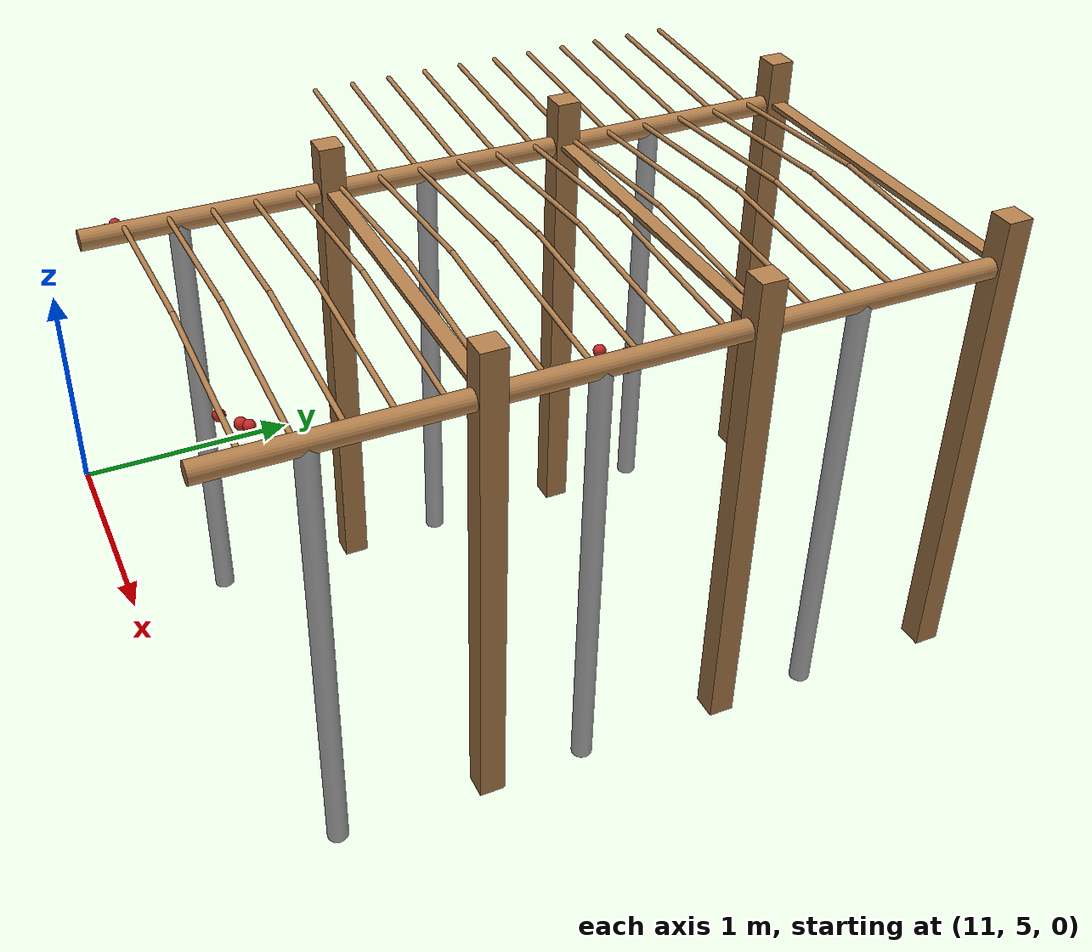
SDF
<sdf version="1.4">
 <model name="pergola">
  <include><name>post_94</name><pose>12.0 6.0 0 0 0 0</pose><uri>model://post</uri></include>
  <include><name>post_95</name><pose>12.0 7.0 0 0 0 0</pose><uri>model://post</uri></include>
  <include><name>post_96</name><pose>12.0 8.0 0 0 0 0</pose><uri>model://post</uri></include>
  <include><name>post_105</name><pose>13.5 6.0 0 0 0 0</pose><uri>model://post</uri></include>
  <include><name>post_106</name><pose>13.5 7.0 0 0 0 0</pose><uri>model://post</uri></include>
  <include><name>post_107</name><pose>13.5 8.0 0 0 0 0</pose><uri>model://post</uri></include>
  <link name="beam_94">
   <pose>12.75 6.0 1.81 0 0 0</pose>
   <collision name="collision"><geometry><box><size>1.5 0.06 0.02</size></box></geometry></collision>
   <visual name="visual">
    <geometry><box><size>1.5 0.06 0.02</size></box></geometry>
    <material><script><name>Gazebo/Wood</name></script></material>
   </visual>
   <inertial>
    <mass>5</mass>
    <inertia>
     <ixx>0.0016666666666666668</ixx>
     <ixy>0.0</ixy>
     <ixz>0.0</ixz>
     <iyy>0.9390000000000001</iyy>
     <iyz>0.0</iyz>
     <izz>0.9376666666666665</izz>
    </inertia>
   </inertial>
  </link>
  <link name="beam_95">
   <pose>12.75 7.0 1.81 0 0 0</pose>
   <collision name="collision"><geometry><box><size>1.5 0.06 0.02</size></box></geometry></collision>
   <visual name="visual">
    <geometry><box><size>1.5 0.06 0.02</size></box></geometry>
    <material><script><name>Gazebo/Wood</name></script></material>
   </visual>
   <inertial>
    <mass>5</mass>
    <inertia>
     <ixx>0.0016666666666666668</ixx>
     <ixy>0.0</ixy>
     <ixz>0.0</ixz>
     <iyy>0.9390000000000001</iyy>
     <iyz>0.0</iyz>
     <izz>0.9376666666666665</izz>
    </inertia>
   </inertial>
  </link>
  <link name="beam_96">
   <pose>12.75 8.0 1.81 0 0 0</pose>
   <collision name="collision"><geometry><box><size>1.5 0.06 0.02</size></box></geometry></collision>
   <visual name="visual">
    <geometry><box><size>1.5 0.06 0.02</size></box></geometry>
    <material><script><name>Gazebo/Wood</name></script></material>
   </visual>
   <inertial>
    <mass>5</mass>
    <inertia>
     <ixx>0.0016666666666666668</ixx>
     <ixy>0.0</ixy>
     <ixz>0.0</ixz>
     <iyy>0.9390000000000001</iyy>
     <iyz>0.0</iyz>
     <izz>0.9376666666666665</izz>
    </inertia>
   </inertial>
  </link>
  <include><name>tree_85</name><pose>12.0 5.4 0 0 0 0</pose><uri>model://tree_trunk</uri></include>
  <include><name>tree_86</name><pose>12.0 6.4 0 0 0 0</pose><uri>model://tree_trunk</uri></include>
  <include><name>tree_87</name><pose>12.0 7.4 0 0 0 0</pose><uri>model://tree_trunk</uri></include>
  <include><name>tree_95</name><pose>13.5 5.4 0 0 0 0</pose><uri>model://tree_trunk</uri></include>
  <include><name>tree_96</name><pose>13.5 6.4 0 0 0 0</pose><uri>model://tree_trunk</uri></include>
  <include><name>tree_97</name><pose>13.5 7.4 0 0 0 0</pose><uri>model://tree_trunk</uri></include>
  <link name="baseBranch_85">
   <pose>12.0 5.5 1.8 1.5707963267948966 0 0</pose>
   <collision name="collision">
    <geometry><cylinder><radius>0.04</radius><length>0.94</length></cylinder></geometry>
   </collision>
   <visual name="visual">
    <geometry><cylinder><radius>0.04</radius><length>0.94</length></cylinder></geometry>
    <material><script><name>Gazebo/WoodFloor</name></script></material>
   </visual>
   <inertial>
    <mass>10</mass>
    <inertia>
     <ixx>0.7403333333333334</ixx>
     <ixy>0.0</ixy>
     <ixz>0.0</ixz>
     <iyy>0.7403333333333334</iyy>
     <iyz>0.0</iyz>
     <izz>0.008</izz>
    </inertia>
   </inertial>
  </link>
  <link name="baseBranch_86">
   <pose>12.0 6.5 1.8 1.5707963267948966 0 0</pose>
   <collision name="collision">
    <geometry><cylinder><radius>0.04</radius><length>0.94</length></cylinder></geometry>
   </collision>
   <visual name="visual">
    <geometry><cylinder><radius>0.04</radius><length>0.94</length></cylinder></geometry>
    <material><script><name>Gazebo/WoodFloor</name></script></material>
   </visual>
   <inertial>
    <mass>10</mass>
    <inertia>
     <ixx>0.7403333333333334</ixx>
     <ixy>0.0</ixy>
     <ixz>0.0</ixz>
     <iyy>0.7403333333333334</iyy>
     <iyz>0.0</iyz>
     <izz>0.008</izz>
    </inertia>
   </inertial>
  </link>
  <link name="baseBranch_87">
   <pose>12.0 7.5 1.8 1.5707963267948966 0 0</pose>
   <collision name="collision">
    <geometry><cylinder><radius>0.04</radius><length>0.94</length></cylinder></geometry>
   </collision>
   <visual name="visual">
    <geometry><cylinder><radius>0.04</radius><length>0.94</length></cylinder></geometry>
    <material><script><name>Gazebo/WoodFloor</name></script></material>
   </visual>
   <inertial>
    <mass>10</mass>
    <inertia>
     <ixx>0.7403333333333334</ixx>
     <ixy>0.0</ixy>
     <ixz>0.0</ixz>
     <iyy>0.7403333333333334</iyy>
     <iyz>0.0</iyz>
     <izz>0.008</izz>
    </inertia>
   </inertial>
  </link>
  <link name="baseBranch_95">
   <pose>13.5 5.5 1.8 1.5707963267948966 0 0</pose>
   <collision name="collision">
    <geometry><cylinder><radius>0.04</radius><length>0.94</length></cylinder></geometry>
   </collision>
   <visual name="visual">
    <geometry><cylinder><radius>0.04</radius><length>0.94</length></cylinder></geometry>
    <material><script><name>Gazebo/WoodFloor</name></script></material>
   </visual>
   <inertial>
    <mass>10</mass>
    <inertia>
     <ixx>0.7403333333333334</ixx>
     <ixy>0.0</ixy>
     <ixz>0.0</ixz>
     <iyy>0.7403333333333334</iyy>
     <iyz>0.0</iyz>
     <izz>0.008</izz>
    </inertia>
   </inertial>
  </link>
  <link name="baseBranch_96">
   <pose>13.5 6.5 1.8 1.5707963267948966 0 0</pose>
   <collision name="collision">
    <geometry><cylinder><radius>0.04</radius><length>0.94</length></cylinder></geometry>
   </collision>
   <visual name="visual">
    <geometry><cylinder><radius>0.04</radius><length>0.94</length></cylinder></geometry>
    <material><script><name>Gazebo/WoodFloor</name></script></material>
   </visual>
   <inertial>
    <mass>10</mass>
    <inertia>
     <ixx>0.7403333333333334</ixx>
     <ixy>0.0</ixy>
     <ixz>0.0</ixz>
     <iyy>0.7403333333333334</iyy>
     <iyz>0.0</iyz>
     <izz>0.008</izz>
    </inertia>
   </inertial>
  </link>
  <link name="baseBranch_97">
   <pose>13.5 7.5 1.8 1.5707963267948966 0 0</pose>
   <collision name="collision">
    <geometry><cylinder><radius>0.04</radius><length>0.94</length></cylinder></geometry>
   </collision>
   <visual name="visual">
    <geometry><cylinder><radius>0.04</radius><length>0.94</length></cylinder></geometry>
    <material><script><name>Gazebo/WoodFloor</name></script></material>
   </visual>
   <inertial>
    <mass>10</mass>
    <inertia>
     <ixx>0.7403333333333334</ixx>
     <ixy>0.0</ixy>
     <ixz>0.0</ixz>
     <iyy>0.7403333333333334</iyy>
     <iyz>0.0</iyz>
     <izz>0.008</izz>
    </inertia>
   </inertial>
  </link>
  <link name="vine_915">
   <pose>11.625 6.196666666666666 1.85 0 -1.5042281630190728 0</pose>
   <collision name="collision">
    <geometry><cylinder><radius>0.01</radius><length>0.7516648189186453</length></cylinder></geometry>
   </collision>
   <visual name="visual">
    <geometry><cylinder><radius>0.01</radius><length>0.7516648189186453</length></cylinder></geometry>
    <material><script><name>Gazebo/WoodFloor</name></script></material>
   </visual>
   <inertial>
    <mass>5</mass>
    <inertia>
     <ixx>0.23554166666666657</ixx>
     <ixy>0.0</ixy>
     <ixz>0.0</ixz>
     <iyy>0.23554166666666657</iyy>
     <iyz>0.0</iyz>
     <izz>0.00025</izz>
    </inertia>
   </inertial>
  </link>
  <link name="vine_917">
   <pose>11.625 6.363333333333333 1.85 0 -1.5042281630190728 0</pose>
   <collision name="collision">
    <geometry><cylinder><radius>0.01</radius><length>0.7516648189186453</length></cylinder></geometry>
   </collision>
   <visual name="visual">
    <geometry><cylinder><radius>0.01</radius><length>0.7516648189186453</length></cylinder></geometry>
    <material><script><name>Gazebo/WoodFloor</name></script></material>
   </visual>
   <inertial>
    <mass>5</mass>
    <inertia>
     <ixx>0.23554166666666657</ixx>
     <ixy>0.0</ixy>
     <ixz>0.0</ixz>
     <iyy>0.23554166666666657</iyy>
     <iyz>0.0</iyz>
     <izz>0.00025</izz>
    </inertia>
   </inertial>
  </link>
  <link name="vine_919">
   <pose>11.625 6.53 1.85 0 -1.5042281630190728 0</pose>
   <collision name="collision">
    <geometry><cylinder><radius>0.01</radius><length>0.7516648189186453</length></cylinder></geometry>
   </collision>
   <visual name="visual">
    <geometry><cylinder><radius>0.01</radius><length>0.7516648189186453</length></cylinder></geometry>
    <material><script><name>Gazebo/WoodFloor</name></script></material>
   </visual>
   <inertial>
    <mass>5</mass>
    <inertia>
     <ixx>0.23554166666666657</ixx>
     <ixy>0.0</ixy>
     <ixz>0.0</ixz>
     <iyy>0.23554166666666657</iyy>
     <iyz>0.0</iyz>
     <izz>0.00025</izz>
    </inertia>
   </inertial>
  </link>
  <link name="vine_921">
   <pose>11.625 6.696666666666666 1.85 0 -1.5042281630190728 0</pose>
   <collision name="collision">
    <geometry><cylinder><radius>0.01</radius><length>0.7516648189186453</length></cylinder></geometry>
   </collision>
   <visual name="visual">
    <geometry><cylinder><radius>0.01</radius><length>0.7516648189186453</length></cylinder></geometry>
    <material><script><name>Gazebo/WoodFloor</name></script></material>
   </visual>
   <inertial>
    <mass>5</mass>
    <inertia>
     <ixx>0.23554166666666657</ixx>
     <ixy>0.0</ixy>
     <ixz>0.0</ixz>
     <iyy>0.23554166666666657</iyy>
     <iyz>0.0</iyz>
     <izz>0.00025</izz>
    </inertia>
   </inertial>
  </link>
  <link name="vine_923">
   <pose>11.625 6.863333333333333 1.85 0 -1.5042281630190728 0</pose>
   <collision name="collision">
    <geometry><cylinder><radius>0.01</radius><length>0.7516648189186453</length></cylinder></geometry>
   </collision>
   <visual name="visual">
    <geometry><cylinder><radius>0.01</radius><length>0.7516648189186453</length></cylinder></geometry>
    <material><script><name>Gazebo/WoodFloor</name></script></material>
   </visual>
   <inertial>
    <mass>5</mass>
    <inertia>
     <ixx>0.23554166666666657</ixx>
     <ixy>0.0</ixy>
     <ixz>0.0</ixz>
     <iyy>0.23554166666666657</iyy>
     <iyz>0.0</iyz>
     <izz>0.00025</izz>
    </inertia>
   </inertial>
  </link>
  <link name="vine_925">
   <pose>11.625 7.03 1.85 0 -1.5042281630190728 0</pose>
   <collision name="collision">
    <geometry><cylinder><radius>0.01</radius><length>0.7516648189186453</length></cylinder></geometry>
   </collision>
   <visual name="visual">
    <geometry><cylinder><radius>0.01</radius><length>0.7516648189186453</length></cylinder></geometry>
    <material><script><name>Gazebo/WoodFloor</name></script></material>
   </visual>
   <inertial>
    <mass>5</mass>
    <inertia>
     <ixx>0.23554166666666657</ixx>
     <ixy>0.0</ixy>
     <ixz>0.0</ixz>
     <iyy>0.23554166666666657</iyy>
     <iyz>0.0</iyz>
     <izz>0.00025</izz>
    </inertia>
   </inertial>
  </link>
  <link name="vine_927">
   <pose>11.625 7.196666666666666 1.85 0 -1.5042281630190728 0</pose>
   <collision name="collision">
    <geometry><cylinder><radius>0.01</radius><length>0.7516648189186453</length></cylinder></geometry>
   </collision>
   <visual name="visual">
    <geometry><cylinder><radius>0.01</radius><length>0.7516648189186453</length></cylinder></geometry>
    <material><script><name>Gazebo/WoodFloor</name></script></material>
   </visual>
   <inertial>
    <mass>5</mass>
    <inertia>
     <ixx>0.23554166666666657</ixx>
     <ixy>0.0</ixy>
     <ixz>0.0</ixz>
     <iyy>0.23554166666666657</iyy>
     <iyz>0.0</iyz>
     <izz>0.00025</izz>
    </inertia>
   </inertial>
  </link>
  <link name="vine_929">
   <pose>11.625 7.363333333333333 1.85 0 -1.5042281630190728 0</pose>
   <collision name="collision">
    <geometry><cylinder><radius>0.01</radius><length>0.7516648189186453</length></cylinder></geometry>
   </collision>
   <visual name="visual">
    <geometry><cylinder><radius>0.01</radius><length>0.7516648189186453</length></cylinder></geometry>
    <material><script><name>Gazebo/WoodFloor</name></script></material>
   </visual>
   <inertial>
    <mass>5</mass>
    <inertia>
     <ixx>0.23554166666666657</ixx>
     <ixy>0.0</ixy>
     <ixz>0.0</ixz>
     <iyy>0.23554166666666657</iyy>
     <iyz>0.0</iyz>
     <izz>0.00025</izz>
    </inertia>
   </inertial>
  </link>
  <link name="vine_931">
   <pose>11.625 7.53 1.85 0 -1.5042281630190728 0</pose>
   <collision name="collision">
    <geometry><cylinder><radius>0.01</radius><length>0.7516648189186453</length></cylinder></geometry>
   </collision>
   <visual name="visual">
    <geometry><cylinder><radius>0.01</radius><length>0.7516648189186453</length></cylinder></geometry>
    <material><script><name>Gazebo/WoodFloor</name></script></material>
   </visual>
   <inertial>
    <mass>5</mass>
    <inertia>
     <ixx>0.23554166666666657</ixx>
     <ixy>0.0</ixy>
     <ixz>0.0</ixz>
     <iyy>0.23554166666666657</iyy>
     <iyz>0.0</iyz>
     <izz>0.00025</izz>
    </inertia>
   </inertial>
  </link>
  <link name="vine_933">
   <pose>11.625 7.696666666666666 1.85 0 -1.5042281630190728 0</pose>
   <collision name="collision">
    <geometry><cylinder><radius>0.01</radius><length>0.7516648189186453</length></cylinder></geometry>
   </collision>
   <visual name="visual">
    <geometry><cylinder><radius>0.01</radius><length>0.7516648189186453</length></cylinder></geometry>
    <material><script><name>Gazebo/WoodFloor</name></script></material>
   </visual>
   <inertial>
    <mass>5</mass>
    <inertia>
     <ixx>0.23554166666666657</ixx>
     <ixy>0.0</ixy>
     <ixz>0.0</ixz>
     <iyy>0.23554166666666657</iyy>
     <iyz>0.0</iyz>
     <izz>0.00025</izz>
    </inertia>
   </inertial>
  </link>
  <link name="vine_935">
   <pose>11.625 7.863333333333333 1.85 0 -1.5042281630190728 0</pose>
   <collision name="collision">
    <geometry><cylinder><radius>0.01</radius><length>0.7516648189186453</length></cylinder></geometry>
   </collision>
   <visual name="visual">
    <geometry><cylinder><radius>0.01</radius><length>0.7516648189186453</length></cylinder></geometry>
    <material><script><name>Gazebo/WoodFloor</name></script></material>
   </visual>
   <inertial>
    <mass>5</mass>
    <inertia>
     <ixx>0.23554166666666657</ixx>
     <ixy>0.0</ixy>
     <ixz>0.0</ixz>
     <iyy>0.23554166666666657</iyy>
     <iyz>0.0</iyz>
     <izz>0.00025</izz>
    </inertia>
   </inertial>
  </link>
  <link name="vine_1022">
   <pose>12.375 5.196666666666666 1.85 0 1.5042281630190728 0</pose>
   <collision name="collision">
    <geometry><cylinder><radius>0.01</radius><length>0.7516648189186453</length></cylinder></geometry>
   </collision>
   <visual name="visual">
    <geometry><cylinder><radius>0.01</radius><length>0.7516648189186453</length></cylinder></geometry>
    <material><script><name>Gazebo/WoodFloor</name></script></material>
   </visual>
   <inertial>
    <mass>5</mass>
    <inertia>
     <ixx>0.23554166666666657</ixx>
     <ixy>0.0</ixy>
     <ixz>0.0</ixz>
     <iyy>0.23554166666666657</iyy>
     <iyz>0.0</iyz>
     <izz>0.00025</izz>
    </inertia>
   </inertial>
  </link>
  <link name="vine_1023">
   <pose>13.125 5.196666666666666 1.85 0 -1.5042281630190728 0</pose>
   <collision name="collision">
    <geometry><cylinder><radius>0.01</radius><length>0.7516648189186453</length></cylinder></geometry>
   </collision>
   <visual name="visual">
    <geometry><cylinder><radius>0.01</radius><length>0.7516648189186453</length></cylinder></geometry>
    <material><script><name>Gazebo/WoodFloor</name></script></material>
   </visual>
   <inertial>
    <mass>5</mass>
    <inertia>
     <ixx>0.23554166666666657</ixx>
     <ixy>0.0</ixy>
     <ixz>0.0</ixz>
     <iyy>0.23554166666666657</iyy>
     <iyz>0.0</iyz>
     <izz>0.00025</izz>
    </inertia>
   </inertial>
  </link>
  <link name="vine_1024">
   <pose>12.375 5.363333333333333 1.85 0 1.5042281630190728 0</pose>
   <collision name="collision">
    <geometry><cylinder><radius>0.01</radius><length>0.7516648189186453</length></cylinder></geometry>
   </collision>
   <visual name="visual">
    <geometry><cylinder><radius>0.01</radius><length>0.7516648189186453</length></cylinder></geometry>
    <material><script><name>Gazebo/WoodFloor</name></script></material>
   </visual>
   <inertial>
    <mass>5</mass>
    <inertia>
     <ixx>0.23554166666666657</ixx>
     <ixy>0.0</ixy>
     <ixz>0.0</ixz>
     <iyy>0.23554166666666657</iyy>
     <iyz>0.0</iyz>
     <izz>0.00025</izz>
    </inertia>
   </inertial>
  </link>
  <link name="vine_1025">
   <pose>13.125 5.363333333333333 1.85 0 -1.5042281630190728 0</pose>
   <collision name="collision">
    <geometry><cylinder><radius>0.01</radius><length>0.7516648189186453</length></cylinder></geometry>
   </collision>
   <visual name="visual">
    <geometry><cylinder><radius>0.01</radius><length>0.7516648189186453</length></cylinder></geometry>
    <material><script><name>Gazebo/WoodFloor</name></script></material>
   </visual>
   <inertial>
    <mass>5</mass>
    <inertia>
     <ixx>0.23554166666666657</ixx>
     <ixy>0.0</ixy>
     <ixz>0.0</ixz>
     <iyy>0.23554166666666657</iyy>
     <iyz>0.0</iyz>
     <izz>0.00025</izz>
    </inertia>
   </inertial>
  </link>
  <link name="vine_1026">
   <pose>12.375 5.53 1.85 0 1.5042281630190728 0</pose>
   <collision name="collision">
    <geometry><cylinder><radius>0.01</radius><length>0.7516648189186453</length></cylinder></geometry>
   </collision>
   <visual name="visual">
    <geometry><cylinder><radius>0.01</radius><length>0.7516648189186453</length></cylinder></geometry>
    <material><script><name>Gazebo/WoodFloor</name></script></material>
   </visual>
   <inertial>
    <mass>5</mass>
    <inertia>
     <ixx>0.23554166666666657</ixx>
     <ixy>0.0</ixy>
     <ixz>0.0</ixz>
     <iyy>0.23554166666666657</iyy>
     <iyz>0.0</iyz>
     <izz>0.00025</izz>
    </inertia>
   </inertial>
  </link>
  <link name="vine_1027">
   <pose>13.125 5.53 1.85 0 -1.5042281630190728 0</pose>
   <collision name="collision">
    <geometry><cylinder><radius>0.01</radius><length>0.7516648189186453</length></cylinder></geometry>
   </collision>
   <visual name="visual">
    <geometry><cylinder><radius>0.01</radius><length>0.7516648189186453</length></cylinder></geometry>
    <material><script><name>Gazebo/WoodFloor</name></script></material>
   </visual>
   <inertial>
    <mass>5</mass>
    <inertia>
     <ixx>0.23554166666666657</ixx>
     <ixy>0.0</ixy>
     <ixz>0.0</ixz>
     <iyy>0.23554166666666657</iyy>
     <iyz>0.0</iyz>
     <izz>0.00025</izz>
    </inertia>
   </inertial>
  </link>
  <link name="vine_1028">
   <pose>12.375 5.696666666666666 1.85 0 1.5042281630190728 0</pose>
   <collision name="collision">
    <geometry><cylinder><radius>0.01</radius><length>0.7516648189186453</length></cylinder></geometry>
   </collision>
   <visual name="visual">
    <geometry><cylinder><radius>0.01</radius><length>0.7516648189186453</length></cylinder></geometry>
    <material><script><name>Gazebo/WoodFloor</name></script></material>
   </visual>
   <inertial>
    <mass>5</mass>
    <inertia>
     <ixx>0.23554166666666657</ixx>
     <ixy>0.0</ixy>
     <ixz>0.0</ixz>
     <iyy>0.23554166666666657</iyy>
     <iyz>0.0</iyz>
     <izz>0.00025</izz>
    </inertia>
   </inertial>
  </link>
  <link name="vine_1029">
   <pose>13.125 5.696666666666666 1.85 0 -1.5042281630190728 0</pose>
   <collision name="collision">
    <geometry><cylinder><radius>0.01</radius><length>0.7516648189186453</length></cylinder></geometry>
   </collision>
   <visual name="visual">
    <geometry><cylinder><radius>0.01</radius><length>0.7516648189186453</length></cylinder></geometry>
    <material><script><name>Gazebo/WoodFloor</name></script></material>
   </visual>
   <inertial>
    <mass>5</mass>
    <inertia>
     <ixx>0.23554166666666657</ixx>
     <ixy>0.0</ixy>
     <ixz>0.0</ixz>
     <iyy>0.23554166666666657</iyy>
     <iyz>0.0</iyz>
     <izz>0.00025</izz>
    </inertia>
   </inertial>
  </link>
  <link name="vine_1030">
   <pose>12.375 5.863333333333333 1.85 0 1.5042281630190728 0</pose>
   <collision name="collision">
    <geometry><cylinder><radius>0.01</radius><length>0.7516648189186453</length></cylinder></geometry>
   </collision>
   <visual name="visual">
    <geometry><cylinder><radius>0.01</radius><length>0.7516648189186453</length></cylinder></geometry>
    <material><script><name>Gazebo/WoodFloor</name></script></material>
   </visual>
   <inertial>
    <mass>5</mass>
    <inertia>
     <ixx>0.23554166666666657</ixx>
     <ixy>0.0</ixy>
     <ixz>0.0</ixz>
     <iyy>0.23554166666666657</iyy>
     <iyz>0.0</iyz>
     <izz>0.00025</izz>
    </inertia>
   </inertial>
  </link>
  <link name="vine_1031">
   <pose>13.125 5.863333333333333 1.85 0 -1.5042281630190728 0</pose>
   <collision name="collision">
    <geometry><cylinder><radius>0.01</radius><length>0.7516648189186453</length></cylinder></geometry>
   </collision>
   <visual name="visual">
    <geometry><cylinder><radius>0.01</radius><length>0.7516648189186453</length></cylinder></geometry>
    <material><script><name>Gazebo/WoodFloor</name></script></material>
   </visual>
   <inertial>
    <mass>5</mass>
    <inertia>
     <ixx>0.23554166666666657</ixx>
     <ixy>0.0</ixy>
     <ixz>0.0</ixz>
     <iyy>0.23554166666666657</iyy>
     <iyz>0.0</iyz>
     <izz>0.00025</izz>
    </inertia>
   </inertial>
  </link>
  <link name="vine_1032">
   <pose>12.375 6.03 1.85 0 1.5042281630190728 0</pose>
   <collision name="collision">
    <geometry><cylinder><radius>0.01</radius><length>0.7516648189186453</length></cylinder></geometry>
   </collision>
   <visual name="visual">
    <geometry><cylinder><radius>0.01</radius><length>0.7516648189186453</length></cylinder></geometry>
    <material><script><name>Gazebo/WoodFloor</name></script></material>
   </visual>
   <inertial>
    <mass>5</mass>
    <inertia>
     <ixx>0.23554166666666657</ixx>
     <ixy>0.0</ixy>
     <ixz>0.0</ixz>
     <iyy>0.23554166666666657</iyy>
     <iyz>0.0</iyz>
     <izz>0.00025</izz>
    </inertia>
   </inertial>
  </link>
  <link name="vine_1033">
   <pose>13.125 6.03 1.85 0 -1.5042281630190728 0</pose>
   <collision name="collision">
    <geometry><cylinder><radius>0.01</radius><length>0.7516648189186453</length></cylinder></geometry>
   </collision>
   <visual name="visual">
    <geometry><cylinder><radius>0.01</radius><length>0.7516648189186453</length></cylinder></geometry>
    <material><script><name>Gazebo/WoodFloor</name></script></material>
   </visual>
   <inertial>
    <mass>5</mass>
    <inertia>
     <ixx>0.23554166666666657</ixx>
     <ixy>0.0</ixy>
     <ixz>0.0</ixz>
     <iyy>0.23554166666666657</iyy>
     <iyz>0.0</iyz>
     <izz>0.00025</izz>
    </inertia>
   </inertial>
  </link>
  <link name="vine_1034">
   <pose>12.375 6.196666666666666 1.85 0 1.5042281630190728 0</pose>
   <collision name="collision">
    <geometry><cylinder><radius>0.01</radius><length>0.7516648189186453</length></cylinder></geometry>
   </collision>
   <visual name="visual">
    <geometry><cylinder><radius>0.01</radius><length>0.7516648189186453</length></cylinder></geometry>
    <material><script><name>Gazebo/WoodFloor</name></script></material>
   </visual>
   <inertial>
    <mass>5</mass>
    <inertia>
     <ixx>0.23554166666666657</ixx>
     <ixy>0.0</ixy>
     <ixz>0.0</ixz>
     <iyy>0.23554166666666657</iyy>
     <iyz>0.0</iyz>
     <izz>0.00025</izz>
    </inertia>
   </inertial>
  </link>
  <link name="vine_1035">
   <pose>13.125 6.196666666666666 1.85 0 -1.5042281630190728 0</pose>
   <collision name="collision">
    <geometry><cylinder><radius>0.01</radius><length>0.7516648189186453</length></cylinder></geometry>
   </collision>
   <visual name="visual">
    <geometry><cylinder><radius>0.01</radius><length>0.7516648189186453</length></cylinder></geometry>
    <material><script><name>Gazebo/WoodFloor</name></script></material>
   </visual>
   <inertial>
    <mass>5</mass>
    <inertia>
     <ixx>0.23554166666666657</ixx>
     <ixy>0.0</ixy>
     <ixz>0.0</ixz>
     <iyy>0.23554166666666657</iyy>
     <iyz>0.0</iyz>
     <izz>0.00025</izz>
    </inertia>
   </inertial>
  </link>
  <link name="vine_1036">
   <pose>12.375 6.363333333333333 1.85 0 1.5042281630190728 0</pose>
   <collision name="collision">
    <geometry><cylinder><radius>0.01</radius><length>0.7516648189186453</length></cylinder></geometry>
   </collision>
   <visual name="visual">
    <geometry><cylinder><radius>0.01</radius><length>0.7516648189186453</length></cylinder></geometry>
    <material><script><name>Gazebo/WoodFloor</name></script></material>
   </visual>
   <inertial>
    <mass>5</mass>
    <inertia>
     <ixx>0.23554166666666657</ixx>
     <ixy>0.0</ixy>
     <ixz>0.0</ixz>
     <iyy>0.23554166666666657</iyy>
     <iyz>0.0</iyz>
     <izz>0.00025</izz>
    </inertia>
   </inertial>
  </link>
  <link name="vine_1037">
   <pose>13.125 6.363333333333333 1.85 0 -1.5042281630190728 0</pose>
   <collision name="collision">
    <geometry><cylinder><radius>0.01</radius><length>0.7516648189186453</length></cylinder></geometry>
   </collision>
   <visual name="visual">
    <geometry><cylinder><radius>0.01</radius><length>0.7516648189186453</length></cylinder></geometry>
    <material><script><name>Gazebo/WoodFloor</name></script></material>
   </visual>
   <inertial>
    <mass>5</mass>
    <inertia>
     <ixx>0.23554166666666657</ixx>
     <ixy>0.0</ixy>
     <ixz>0.0</ixz>
     <iyy>0.23554166666666657</iyy>
     <iyz>0.0</iyz>
     <izz>0.00025</izz>
    </inertia>
   </inertial>
  </link>
  <link name="vine_1038">
   <pose>12.375 6.53 1.85 0 1.5042281630190728 0</pose>
   <collision name="collision">
    <geometry><cylinder><radius>0.01</radius><length>0.7516648189186453</length></cylinder></geometry>
   </collision>
   <visual name="visual">
    <geometry><cylinder><radius>0.01</radius><length>0.7516648189186453</length></cylinder></geometry>
    <material><script><name>Gazebo/WoodFloor</name></script></material>
   </visual>
   <inertial>
    <mass>5</mass>
    <inertia>
     <ixx>0.23554166666666657</ixx>
     <ixy>0.0</ixy>
     <ixz>0.0</ixz>
     <iyy>0.23554166666666657</iyy>
     <iyz>0.0</iyz>
     <izz>0.00025</izz>
    </inertia>
   </inertial>
  </link>
  <link name="vine_1039">
   <pose>13.125 6.53 1.85 0 -1.5042281630190728 0</pose>
   <collision name="collision">
    <geometry><cylinder><radius>0.01</radius><length>0.7516648189186453</length></cylinder></geometry>
   </collision>
   <visual name="visual">
    <geometry><cylinder><radius>0.01</radius><length>0.7516648189186453</length></cylinder></geometry>
    <material><script><name>Gazebo/WoodFloor</name></script></material>
   </visual>
   <inertial>
    <mass>5</mass>
    <inertia>
     <ixx>0.23554166666666657</ixx>
     <ixy>0.0</ixy>
     <ixz>0.0</ixz>
     <iyy>0.23554166666666657</iyy>
     <iyz>0.0</iyz>
     <izz>0.00025</izz>
    </inertia>
   </inertial>
  </link>
  <link name="vine_1040">
   <pose>12.375 6.696666666666666 1.85 0 1.5042281630190728 0</pose>
   <collision name="collision">
    <geometry><cylinder><radius>0.01</radius><length>0.7516648189186453</length></cylinder></geometry>
   </collision>
   <visual name="visual">
    <geometry><cylinder><radius>0.01</radius><length>0.7516648189186453</length></cylinder></geometry>
    <material><script><name>Gazebo/WoodFloor</name></script></material>
   </visual>
   <inertial>
    <mass>5</mass>
    <inertia>
     <ixx>0.23554166666666657</ixx>
     <ixy>0.0</ixy>
     <ixz>0.0</ixz>
     <iyy>0.23554166666666657</iyy>
     <iyz>0.0</iyz>
     <izz>0.00025</izz>
    </inertia>
   </inertial>
  </link>
  <link name="vine_1041">
   <pose>13.125 6.696666666666666 1.85 0 -1.5042281630190728 0</pose>
   <collision name="collision">
    <geometry><cylinder><radius>0.01</radius><length>0.7516648189186453</length></cylinder></geometry>
   </collision>
   <visual name="visual">
    <geometry><cylinder><radius>0.01</radius><length>0.7516648189186453</length></cylinder></geometry>
    <material><script><name>Gazebo/WoodFloor</name></script></material>
   </visual>
   <inertial>
    <mass>5</mass>
    <inertia>
     <ixx>0.23554166666666657</ixx>
     <ixy>0.0</ixy>
     <ixz>0.0</ixz>
     <iyy>0.23554166666666657</iyy>
     <iyz>0.0</iyz>
     <izz>0.00025</izz>
    </inertia>
   </inertial>
  </link>
  <link name="vine_1042">
   <pose>12.375 6.863333333333333 1.85 0 1.5042281630190728 0</pose>
   <collision name="collision">
    <geometry><cylinder><radius>0.01</radius><length>0.7516648189186453</length></cylinder></geometry>
   </collision>
   <visual name="visual">
    <geometry><cylinder><radius>0.01</radius><length>0.7516648189186453</length></cylinder></geometry>
    <material><script><name>Gazebo/WoodFloor</name></script></material>
   </visual>
   <inertial>
    <mass>5</mass>
    <inertia>
     <ixx>0.23554166666666657</ixx>
     <ixy>0.0</ixy>
     <ixz>0.0</ixz>
     <iyy>0.23554166666666657</iyy>
     <iyz>0.0</iyz>
     <izz>0.00025</izz>
    </inertia>
   </inertial>
  </link>
  <link name="vine_1043">
   <pose>13.125 6.863333333333333 1.85 0 -1.5042281630190728 0</pose>
   <collision name="collision">
    <geometry><cylinder><radius>0.01</radius><length>0.7516648189186453</length></cylinder></geometry>
   </collision>
   <visual name="visual">
    <geometry><cylinder><radius>0.01</radius><length>0.7516648189186453</length></cylinder></geometry>
    <material><script><name>Gazebo/WoodFloor</name></script></material>
   </visual>
   <inertial>
    <mass>5</mass>
    <inertia>
     <ixx>0.23554166666666657</ixx>
     <ixy>0.0</ixy>
     <ixz>0.0</ixz>
     <iyy>0.23554166666666657</iyy>
     <iyz>0.0</iyz>
     <izz>0.00025</izz>
    </inertia>
   </inertial>
  </link>
  <link name="vine_1044">
   <pose>12.375 7.03 1.85 0 1.5042281630190728 0</pose>
   <collision name="collision">
    <geometry><cylinder><radius>0.01</radius><length>0.7516648189186453</length></cylinder></geometry>
   </collision>
   <visual name="visual">
    <geometry><cylinder><radius>0.01</radius><length>0.7516648189186453</length></cylinder></geometry>
    <material><script><name>Gazebo/WoodFloor</name></script></material>
   </visual>
   <inertial>
    <mass>5</mass>
    <inertia>
     <ixx>0.23554166666666657</ixx>
     <ixy>0.0</ixy>
     <ixz>0.0</ixz>
     <iyy>0.23554166666666657</iyy>
     <iyz>0.0</iyz>
     <izz>0.00025</izz>
    </inertia>
   </inertial>
  </link>
  <link name="vine_1045">
   <pose>13.125 7.03 1.85 0 -1.5042281630190728 0</pose>
   <collision name="collision">
    <geometry><cylinder><radius>0.01</radius><length>0.7516648189186453</length></cylinder></geometry>
   </collision>
   <visual name="visual">
    <geometry><cylinder><radius>0.01</radius><length>0.7516648189186453</length></cylinder></geometry>
    <material><script><name>Gazebo/WoodFloor</name></script></material>
   </visual>
   <inertial>
    <mass>5</mass>
    <inertia>
     <ixx>0.23554166666666657</ixx>
     <ixy>0.0</ixy>
     <ixz>0.0</ixz>
     <iyy>0.23554166666666657</iyy>
     <iyz>0.0</iyz>
     <izz>0.00025</izz>
    </inertia>
   </inertial>
  </link>
  <link name="vine_1046">
   <pose>12.375 7.196666666666666 1.85 0 1.5042281630190728 0</pose>
   <collision name="collision">
    <geometry><cylinder><radius>0.01</radius><length>0.7516648189186453</length></cylinder></geometry>
   </collision>
   <visual name="visual">
    <geometry><cylinder><radius>0.01</radius><length>0.7516648189186453</length></cylinder></geometry>
    <material><script><name>Gazebo/WoodFloor</name></script></material>
   </visual>
   <inertial>
    <mass>5</mass>
    <inertia>
     <ixx>0.23554166666666657</ixx>
     <ixy>0.0</ixy>
     <ixz>0.0</ixz>
     <iyy>0.23554166666666657</iyy>
     <iyz>0.0</iyz>
     <izz>0.00025</izz>
    </inertia>
   </inertial>
  </link>
  <link name="vine_1047">
   <pose>13.125 7.196666666666666 1.85 0 -1.5042281630190728 0</pose>
   <collision name="collision">
    <geometry><cylinder><radius>0.01</radius><length>0.7516648189186453</length></cylinder></geometry>
   </collision>
   <visual name="visual">
    <geometry><cylinder><radius>0.01</radius><length>0.7516648189186453</length></cylinder></geometry>
    <material><script><name>Gazebo/WoodFloor</name></script></material>
   </visual>
   <inertial>
    <mass>5</mass>
    <inertia>
     <ixx>0.23554166666666657</ixx>
     <ixy>0.0</ixy>
     <ixz>0.0</ixz>
     <iyy>0.23554166666666657</iyy>
     <iyz>0.0</iyz>
     <izz>0.00025</izz>
    </inertia>
   </inertial>
  </link>
  <link name="vine_1048">
   <pose>12.375 7.363333333333333 1.85 0 1.5042281630190728 0</pose>
   <collision name="collision">
    <geometry><cylinder><radius>0.01</radius><length>0.7516648189186453</length></cylinder></geometry>
   </collision>
   <visual name="visual">
    <geometry><cylinder><radius>0.01</radius><length>0.7516648189186453</length></cylinder></geometry>
    <material><script><name>Gazebo/WoodFloor</name></script></material>
   </visual>
   <inertial>
    <mass>5</mass>
    <inertia>
     <ixx>0.23554166666666657</ixx>
     <ixy>0.0</ixy>
     <ixz>0.0</ixz>
     <iyy>0.23554166666666657</iyy>
     <iyz>0.0</iyz>
     <izz>0.00025</izz>
    </inertia>
   </inertial>
  </link>
  <link name="vine_1049">
   <pose>13.125 7.363333333333333 1.85 0 -1.5042281630190728 0</pose>
   <collision name="collision">
    <geometry><cylinder><radius>0.01</radius><length>0.7516648189186453</length></cylinder></geometry>
   </collision>
   <visual name="visual">
    <geometry><cylinder><radius>0.01</radius><length>0.7516648189186453</length></cylinder></geometry>
    <material><script><name>Gazebo/WoodFloor</name></script></material>
   </visual>
   <inertial>
    <mass>5</mass>
    <inertia>
     <ixx>0.23554166666666657</ixx>
     <ixy>0.0</ixy>
     <ixz>0.0</ixz>
     <iyy>0.23554166666666657</iyy>
     <iyz>0.0</iyz>
     <izz>0.00025</izz>
    </inertia>
   </inertial>
  </link>
  <link name="vine_1050">
   <pose>12.375 7.53 1.85 0 1.5042281630190728 0</pose>
   <collision name="collision">
    <geometry><cylinder><radius>0.01</radius><length>0.7516648189186453</length></cylinder></geometry>
   </collision>
   <visual name="visual">
    <geometry><cylinder><radius>0.01</radius><length>0.7516648189186453</length></cylinder></geometry>
    <material><script><name>Gazebo/WoodFloor</name></script></material>
   </visual>
   <inertial>
    <mass>5</mass>
    <inertia>
     <ixx>0.23554166666666657</ixx>
     <ixy>0.0</ixy>
     <ixz>0.0</ixz>
     <iyy>0.23554166666666657</iyy>
     <iyz>0.0</iyz>
     <izz>0.00025</izz>
    </inertia>
   </inertial>
  </link>
  <link name="vine_1051">
   <pose>13.125 7.53 1.85 0 -1.5042281630190728 0</pose>
   <collision name="collision">
    <geometry><cylinder><radius>0.01</radius><length>0.7516648189186453</length></cylinder></geometry>
   </collision>
   <visual name="visual">
    <geometry><cylinder><radius>0.01</radius><length>0.7516648189186453</length></cylinder></geometry>
    <material><script><name>Gazebo/WoodFloor</name></script></material>
   </visual>
   <inertial>
    <mass>5</mass>
    <inertia>
     <ixx>0.23554166666666657</ixx>
     <ixy>0.0</ixy>
     <ixz>0.0</ixz>
     <iyy>0.23554166666666657</iyy>
     <iyz>0.0</iyz>
     <izz>0.00025</izz>
    </inertia>
   </inertial>
  </link>
  <link name="vine_1052">
   <pose>12.375 7.696666666666666 1.85 0 1.5042281630190728 0</pose>
   <collision name="collision">
    <geometry><cylinder><radius>0.01</radius><length>0.7516648189186453</length></cylinder></geometry>
   </collision>
   <visual name="visual">
    <geometry><cylinder><radius>0.01</radius><length>0.7516648189186453</length></cylinder></geometry>
    <material><script><name>Gazebo/WoodFloor</name></script></material>
   </visual>
   <inertial>
    <mass>5</mass>
    <inertia>
     <ixx>0.23554166666666657</ixx>
     <ixy>0.0</ixy>
     <ixz>0.0</ixz>
     <iyy>0.23554166666666657</iyy>
     <iyz>0.0</iyz>
     <izz>0.00025</izz>
    </inertia>
   </inertial>
  </link>
  <link name="vine_1053">
   <pose>13.125 7.696666666666666 1.85 0 -1.5042281630190728 0</pose>
   <collision name="collision">
    <geometry><cylinder><radius>0.01</radius><length>0.7516648189186453</length></cylinder></geometry>
   </collision>
   <visual name="visual">
    <geometry><cylinder><radius>0.01</radius><length>0.7516648189186453</length></cylinder></geometry>
    <material><script><name>Gazebo/WoodFloor</name></script></material>
   </visual>
   <inertial>
    <mass>5</mass>
    <inertia>
     <ixx>0.23554166666666657</ixx>
     <ixy>0.0</ixy>
     <ixz>0.0</ixz>
     <iyy>0.23554166666666657</iyy>
     <iyz>0.0</iyz>
     <izz>0.00025</izz>
    </inertia>
   </inertial>
  </link>
  <link name="vine_1054">
   <pose>12.375 7.863333333333333 1.85 0 1.5042281630190728 0</pose>
   <collision name="collision">
    <geometry><cylinder><radius>0.01</radius><length>0.7516648189186453</length></cylinder></geometry>
   </collision>
   <visual name="visual">
    <geometry><cylinder><radius>0.01</radius><length>0.7516648189186453</length></cylinder></geometry>
    <material><script><name>Gazebo/WoodFloor</name></script></material>
   </visual>
   <inertial>
    <mass>5</mass>
    <inertia>
     <ixx>0.23554166666666657</ixx>
     <ixy>0.0</ixy>
     <ixz>0.0</ixz>
     <iyy>0.23554166666666657</iyy>
     <iyz>0.0</iyz>
     <izz>0.00025</izz>
    </inertia>
   </inertial>
  </link>
  <link name="vine_1055">
   <pose>13.125 7.863333333333333 1.85 0 -1.5042281630190728 0</pose>
   <collision name="collision">
    <geometry><cylinder><radius>0.01</radius><length>0.7516648189186453</length></cylinder></geometry>
   </collision>
   <visual name="visual">
    <geometry><cylinder><radius>0.01</radius><length>0.7516648189186453</length></cylinder></geometry>
    <material><script><name>Gazebo/WoodFloor</name></script></material>
   </visual>
   <inertial>
    <mass>5</mass>
    <inertia>
     <ixx>0.23554166666666657</ixx>
     <ixy>0.0</ixy>
     <ixz>0.0</ixz>
     <iyy>0.23554166666666657</iyy>
     <iyz>0.0</iyz>
     <izz>0.00025</izz>
    </inertia>
   </inertial>
  </link>
  <link name="fruit_26">
   <pose>13.113052671691348 5.2331301955010066 1.6934133766831527 0 0 0</pose>
   <collision name="fruit_collision_26"><geometry><sphere><radius>0.022</radius></sphere></geometry></collision>
   <visual name="visual">
    <geometry><sphere><radius>0.022</radius></sphere></geometry>
    <material><script><name>Gazebo/Red</name></script></material>
   </visual>
   <inertial>
    <mass>0.05</mass>
    <inertia>
     <ixx>9.679999999999999e-06</ixx>
     <ixy>0.0</ixy>
     <ixz>0.0</ixz>
     <iyy>9.679999999999999e-06</iyy>
     <iyz>0.0</iyz>
     <izz>9.679999999999999e-06</izz>
    </inertia>
   </inertial>
   <sensor name="fruit_contact_26" type="contact">
    <contact><collision>fruit_collision_26</collision></contact>
   </sensor>
  </link>
  <link name="fruit_104">
   <pose>13.345295555242728 6.47466218589634 1.7477651190569936 0 0 0</pose>
   <collision name="fruit_collision_104"><geometry><sphere><radius>0.022</radius></sphere></geometry></collision>
   <visual name="visual">
    <geometry><sphere><radius>0.022</radius></sphere></geometry>
    <material><script><name>Gazebo/Red</name></script></material>
   </visual>
   <inertial>
    <mass>0.05</mass>
    <inertia>
     <ixx>9.679999999999999e-06</ixx>
     <ixy>0.0</ixy>
     <ixz>0.0</ixz>
     <iyy>9.679999999999999e-06</iyy>
     <iyz>0.0</iyz>
     <izz>9.679999999999999e-06</izz>
    </inertia>
   </inertial>
   <sensor name="fruit_contact_104" type="contact">
    <contact><collision>fruit_collision_104</collision></contact>
   </sensor>
  </link>
  <link name="fruit_127">
   <pose>13.182228338858096 5.2836275375048025 1.6910764137902226 0 0 0</pose>
   <collision name="fruit_collision_127"><geometry><sphere><radius>0.022</radius></sphere></geometry></collision>
   <visual name="visual">
    <geometry><sphere><radius>0.022</radius></sphere></geometry>
    <material><script><name>Gazebo/Red</name></script></material>
   </visual>
   <inertial>
    <mass>0.05</mass>
    <inertia>
     <ixx>9.679999999999999e-06</ixx>
     <ixy>0.0</ixy>
     <ixz>0.0</ixz>
     <iyy>9.679999999999999e-06</iyy>
     <iyz>0.0</iyz>
     <izz>9.679999999999999e-06</izz>
    </inertia>
   </inertial>
   <sensor name="fruit_contact_127" type="contact">
    <contact><collision>fruit_collision_127</collision></contact>
   </sensor>
  </link>
  <link name="fruit_208">
   <pose>13.385891475028489 6.570960776141559 1.735255837121766 0 0 0</pose>
   <collision name="fruit_collision_208"><geometry><sphere><radius>0.022</radius></sphere></geometry></collision>
   <visual name="visual">
    <geometry><sphere><radius>0.022</radius></sphere></geometry>
    <material><script><name>Gazebo/Red</name></script></material>
   </visual>
   <inertial>
    <mass>0.05</mass>
    <inertia>
     <ixx>9.679999999999999e-06</ixx>
     <ixy>0.0</ixy>
     <ixz>0.0</ixz>
     <iyy>9.679999999999999e-06</iyy>
     <iyz>0.0</iyz>
     <izz>9.679999999999999e-06</izz>
    </inertia>
   </inertial>
   <sensor name="fruit_contact_208" type="contact">
    <contact><collision>fruit_collision_208</collision></contact>
   </sensor>
  </link>
  <link name="fruit_210">
   <pose>13.203179659669095 5.305330102533623 1.6902813084207087 0 0 0</pose>
   <collision name="fruit_collision_210"><geometry><sphere><radius>0.022</radius></sphere></geometry></collision>
   <visual name="visual">
    <geometry><sphere><radius>0.022</radius></sphere></geometry>
    <material><script><name>Gazebo/Red</name></script></material>
   </visual>
   <inertial>
    <mass>0.05</mass>
    <inertia>
     <ixx>9.679999999999999e-06</ixx>
     <ixy>0.0</ixy>
     <ixz>0.0</ixz>
     <iyy>9.679999999999999e-06</iyy>
     <iyz>0.0</iyz>
     <izz>9.679999999999999e-06</izz>
    </inertia>
   </inertial>
   <sensor name="fruit_contact_210" type="contact">
    <contact><collision>fruit_collision_210</collision></contact>
   </sensor>
  </link>
  <link name="fruit_236">
   <pose>13.389220556331063 6.536224509049003 1.7372583983422174 0 0 0</pose>
   <collision name="fruit_collision_236"><geometry><sphere><radius>0.022</radius></sphere></geometry></collision>
   <visual name="visual">
    <geometry><sphere><radius>0.022</radius></sphere></geometry>
    <material><script><name>Gazebo/Red</name></script></material>
   </visual>
   <inertial>
    <mass>0.05</mass>
    <inertia>
     <ixx>9.679999999999999e-06</ixx>
     <ixy>0.0</ixy>
     <ixz>0.0</ixz>
     <iyy>9.679999999999999e-06</iyy>
     <iyz>0.0</iyz>
     <izz>9.679999999999999e-06</izz>
    </inertia>
   </inertial>
   <sensor name="fruit_contact_236" type="contact">
    <contact><collision>fruit_collision_236</collision></contact>
   </sensor>
  </link>
  <link name="fruit_390">
   <pose>11.760806381813456 5.189659328203184 1.6905320212235828 0 0 0</pose>
   <collision name="fruit_collision_390"><geometry><sphere><radius>0.022</radius></sphere></geometry></collision>
   <visual name="visual">
    <geometry><sphere><radius>0.022</radius></sphere></geometry>
    <material><script><name>Gazebo/Red</name></script></material>
   </visual>
   <inertial>
    <mass>0.05</mass>
    <inertia>
     <ixx>9.679999999999999e-06</ixx>
     <ixy>0.0</ixy>
     <ixz>0.0</ixz>
     <iyy>9.679999999999999e-06</iyy>
     <iyz>0.0</iyz>
     <izz>9.679999999999999e-06</izz>
    </inertia>
   </inertial>
   <sensor name="fruit_contact_390" type="contact">
    <contact><collision>fruit_collision_390</collision></contact>
   </sensor>
  </link>
  <link name="fruit_424">
   <pose>13.453991090482743 6.522593857624622 1.7392560754780768 0 0 0</pose>
   <collision name="fruit_collision_424"><geometry><sphere><radius>0.022</radius></sphere></geometry></collision>
   <visual name="visual">
    <geometry><sphere><radius>0.022</radius></sphere></geometry>
    <material><script><name>Gazebo/Red</name></script></material>
   </visual>
   <inertial>
    <mass>0.05</mass>
    <inertia>
     <ixx>9.679999999999999e-06</ixx>
     <ixy>0.0</ixy>
     <ixz>0.0</ixz>
     <iyy>9.679999999999999e-06</iyy>
     <iyz>0.0</iyz>
     <izz>9.679999999999999e-06</izz>
    </inertia>
   </inertial>
   <sensor name="fruit_contact_424" type="contact">
    <contact><collision>fruit_collision_424</collision></contact>
   </sensor>
  </link>
  <link name="fruit_454">
   <pose>11.741338537973364 5.20646045197025 1.7003234584965836 0 0 0</pose>
   <collision name="fruit_collision_454"><geometry><sphere><radius>0.022</radius></sphere></geometry></collision>
   <visual name="visual">
    <geometry><sphere><radius>0.022</radius></sphere></geometry>
    <material><script><name>Gazebo/Red</name></script></material>
   </visual>
   <inertial>
    <mass>0.05</mass>
    <inertia>
     <ixx>9.679999999999999e-06</ixx>
     <ixy>0.0</ixy>
     <ixz>0.0</ixz>
     <iyy>9.679999999999999e-06</iyy>
     <iyz>0.0</iyz>
     <izz>9.679999999999999e-06</izz>
    </inertia>
   </inertial>
   <sensor name="fruit_contact_454" type="contact">
    <contact><collision>fruit_collision_454</collision></contact>
   </sensor>
  </link>
  <link name="fruit_464">
   <pose>11.75489253856185 5.168461194760116 1.6905963834475395 0 0 0</pose>
   <collision name="fruit_collision_464"><geometry><sphere><radius>0.022</radius></sphere></geometry></collision>
   <visual name="visual">
    <geometry><sphere><radius>0.022</radius></sphere></geometry>
    <material><script><name>Gazebo/Red</name></script></material>
   </visual>
   <inertial>
    <mass>0.05</mass>
    <inertia>
     <ixx>9.679999999999999e-06</ixx>
     <ixy>0.0</ixy>
     <ixz>0.0</ixz>
     <iyy>9.679999999999999e-06</iyy>
     <iyz>0.0</iyz>
     <izz>9.679999999999999e-06</izz>
    </inertia>
   </inertial>
   <sensor name="fruit_contact_464" type="contact">
    <contact><collision>fruit_collision_464</collision></contact>
   </sensor>
  </link>
  <link name="fruit_477">
   <pose>13.389873394086715 6.555259053604727 1.741994802847888 0 0 0</pose>
   <collision name="fruit_collision_477"><geometry><sphere><radius>0.022</radius></sphere></geometry></collision>
   <visual name="visual">
    <geometry><sphere><radius>0.022</radius></sphere></geometry>
    <material><script><name>Gazebo/Red</name></script></material>
   </visual>
   <inertial>
    <mass>0.05</mass>
    <inertia>
     <ixx>9.679999999999999e-06</ixx>
     <ixy>0.0</ixy>
     <ixz>0.0</ixz>
     <iyy>9.679999999999999e-06</iyy>
     <iyz>0.0</iyz>
     <izz>9.679999999999999e-06</izz>
    </inertia>
   </inertial>
   <sensor name="fruit_contact_477" type="contact">
    <contact><collision>fruit_collision_477</collision></contact>
   </sensor>
  </link>
  <link name="fruit_491">
   <pose>13.381096025456154 6.503692561849046 1.7279921542518935 0 0 0</pose>
   <collision name="fruit_collision_491"><geometry><sphere><radius>0.022</radius></sphere></geometry></collision>
   <visual name="visual">
    <geometry><sphere><radius>0.022</radius></sphere></geometry>
    <material><script><name>Gazebo/Red</name></script></material>
   </visual>
   <inertial>
    <mass>0.05</mass>
    <inertia>
     <ixx>9.679999999999999e-06</ixx>
     <ixy>0.0</ixy>
     <ixz>0.0</ixz>
     <iyy>9.679999999999999e-06</iyy>
     <iyz>0.0</iyz>
     <izz>9.679999999999999e-06</izz>
    </inertia>
   </inertial>
   <sensor name="fruit_contact_491" type="contact">
    <contact><collision>fruit_collision_491</collision></contact>
   </sensor>
  </link>
 </model>
</sdf>
